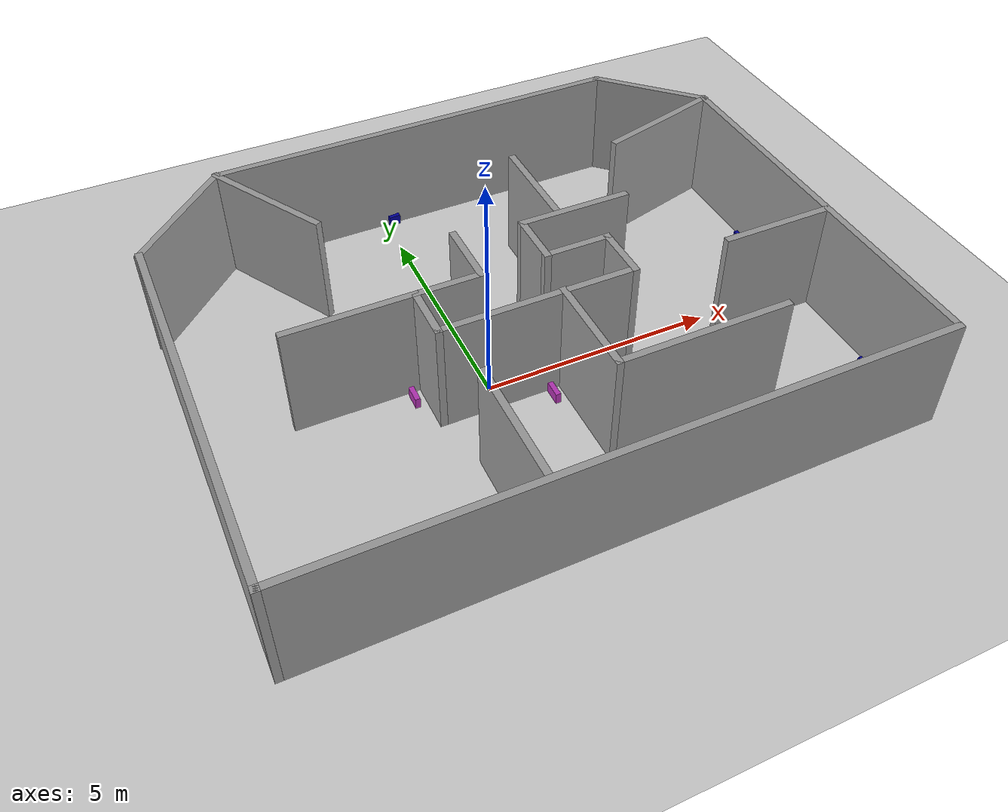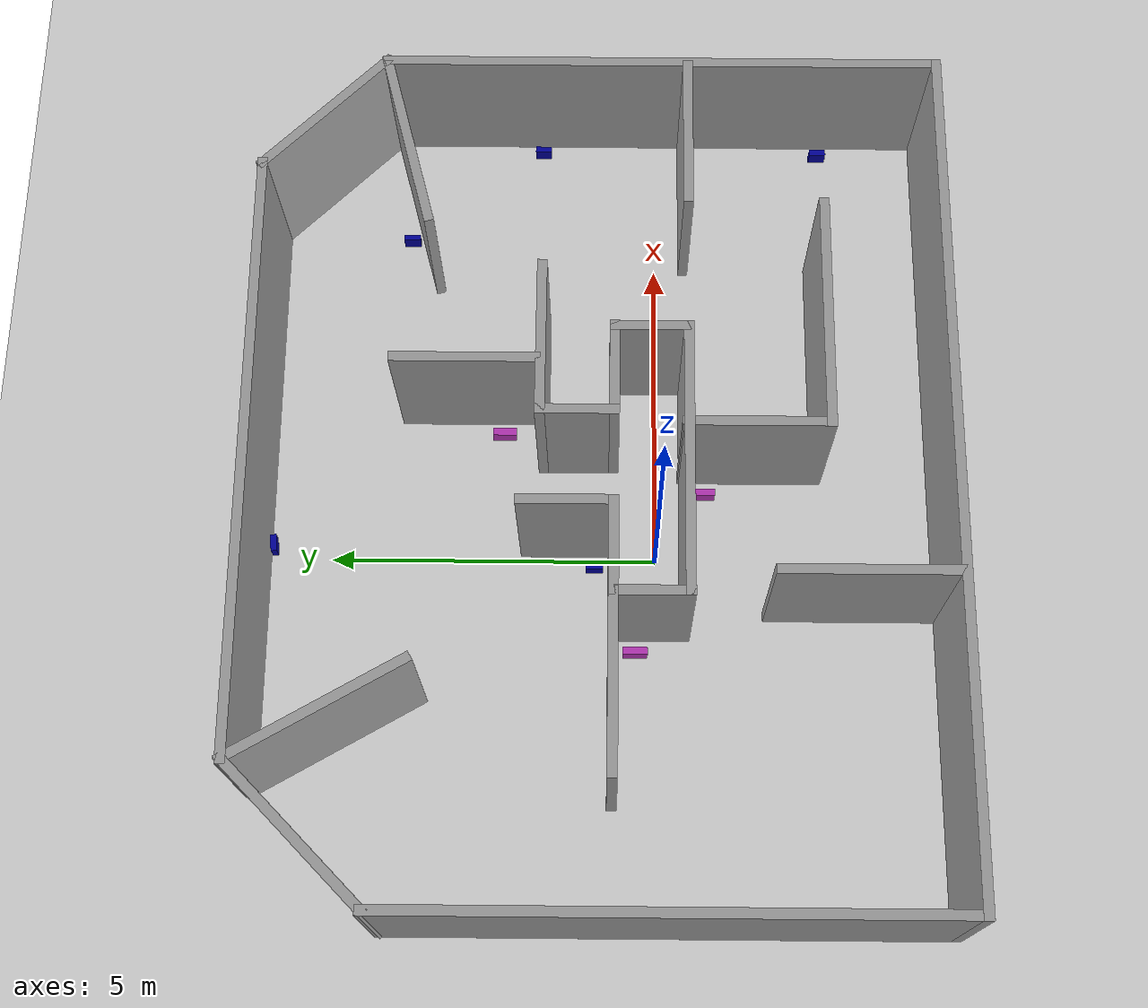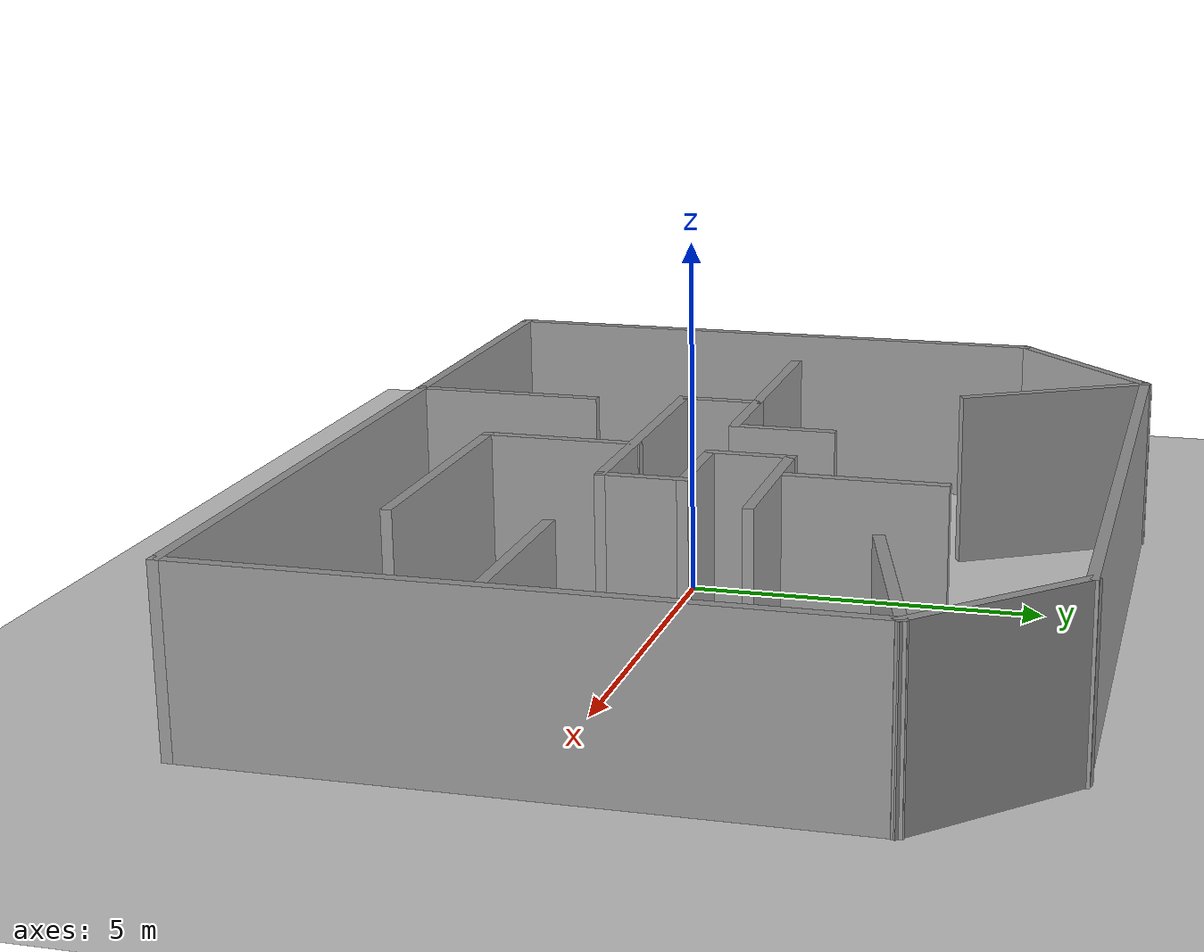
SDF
<sdf version="1.7">
 <world name="default">
  <light name="sun" type="directional">
   <pose>0 0 10 0 -0 0</pose>
   <diffuse>0.8 0.8 0.8 1</diffuse>
   <specular>0.2 0.2 0.2 1</specular>
   <attenuation>
    <range>1000</range>
    <constant>0.9</constant>
    <linear>0.01</linear>
    <quadratic>0.001</quadratic>
   </attenuation>
   <direction>-0.5 0.1 -0.9</direction>
   <spot><inner_angle>0</inner_angle><outer_angle>0</outer_angle><falloff>0</falloff></spot>
  </light>
  <model name="ground_plane">
   <static>1</static>
   <link name="link">
    <collision name="collision">
     <geometry><plane><normal>0 0 1</normal><size>100 100</size></plane></geometry>
     <surface><friction><ode><mu>100</mu><mu2>50</mu2></ode></friction></surface>
    </collision>
    <visual name="visual">
     <cast_shadows>0</cast_shadows>
     <geometry><plane><normal>0 0 1</normal><size>100 100</size></plane></geometry>
     <material>
      <script><uri>file://media/materials/scripts/gazebo.material</uri><name>Gazebo/Grey</name></script>
     </material>
    </visual>
   </link>
  </model>
  <gravity>0 0 -9.8</gravity>
  <magnetic_field>6e-06 2.3e-05 -4.2e-05</magnetic_field>
  <atmosphere type="adiabatic"/>
  <physics type="ode">
   <max_step_size>0.001</max_step_size>
   <real_time_factor>1</real_time_factor>
   <real_time_update_rate>1000</real_time_update_rate>
  </physics>
  <scene><ambient>0.4 0.4 0.4 1</ambient><background>0.7 0.7 0.7 1</background><shadows>1</shadows></scene>
  <audio><device>default</device></audio>
  <spherical_coordinates>
   <surface_model>EARTH_WGS84</surface_model>
   <latitude_deg>0</latitude_deg>
   <longitude_deg>0</longitude_deg>
   <elevation>0</elevation>
   <heading_deg>0</heading_deg>
  </spherical_coordinates>
  <model name="New_Enevironment">
   <pose>0.897235 0.87733 0 0 -0 0</pose>
   <link name="Wall_48">
    <collision name="Wall_48_Collision">
     <geometry><box><size>2.75 0.15 2.5</size></box></geometry>
     <pose>0 0 1.25 0 -0 0</pose>
    </collision>
    <visual name="Wall_48_Visual">
     <pose>0 0 1.25 0 -0 0</pose>
     <geometry><box><size>2.75 0.15 2.5</size></box></geometry>
     <material>
      <script><uri>file://media/materials/scripts/gazebo.material</uri><name>Gazebo/Grey</name></script>
      <ambient>1 1 1 1</ambient>
     </material>
     <meta><layer>0</layer></meta>
    </visual>
    <pose>5.63076 4.28447 0 0 -0 -0.785398</pose>
   </link>
   <link name="Wall_49">
    <collision name="Wall_49_Collision">
     <geometry><box><size>8.75 0.15 2.5</size></box></geometry>
     <pose>0 0 1.25 0 -0 0</pose>
    </collision>
    <visual name="Wall_49_Visual">
     <pose>0 0 1.25 0 -0 0</pose>
     <geometry><box><size>8.75 0.15 2.5</size></box></geometry>
     <material>
      <script><uri>file://media/materials/scripts/gazebo.material</uri><name>Gazebo/Grey</name></script>
      <ambient>1 1 1 1</ambient>
     </material>
     <meta><layer>0</layer></meta>
    </visual>
    <pose>6.55 -0.934772 0 0 -0 -1.5708</pose>
   </link>
   <link name="Wall_50">
    <collision name="Wall_50_Collision">
     <geometry><box><size>13.25 0.15 2.5</size></box></geometry>
     <pose>0 0 1.25 0 -0 0</pose>
    </collision>
    <visual name="Wall_50_Visual">
     <pose>0 0 1.25 0 -0 0</pose>
     <geometry><box><size>13.25 0.15 2.5</size></box></geometry>
     <material>
      <script><uri>file://media/materials/scripts/gazebo.material</uri><name>Gazebo/Grey</name></script>
      <ambient>1 1 1 1</ambient>
     </material>
     <meta><layer>0</layer></meta>
    </visual>
    <pose>-0 -5.23477 0 0 -0 3.14159</pose>
   </link>
   <link name="Wall_51">
    <collision name="Wall_51_Collision">
     <geometry><box><size>8.5 0.15 2.5</size></box></geometry>
     <pose>0 0 1.25 0 -0 0</pose>
    </collision>
    <visual name="Wall_51_Visual">
     <pose>0 0 1.25 0 -0 0</pose>
     <geometry><box><size>8.5 0.15 2.5</size></box></geometry>
     <material>
      <script><uri>file://media/materials/scripts/gazebo.material</uri><name>Gazebo/Grey</name></script>
      <ambient>1 1 1 1</ambient>
     </material>
     <meta><layer>0</layer></meta>
    </visual>
    <pose>-6.55 -1.05977 0 0 -0 1.5708</pose>
   </link>
   <link name="Wall_52">
    <collision name="Wall_52_Collision">
     <geometry><box><size>3 0.15 2.5</size></box></geometry>
     <pose>0 0 1.25 0 -0 0</pose>
    </collision>
    <visual name="Wall_52_Visual">
     <pose>0 0 1.25 0 -0 0</pose>
     <geometry><box><size>3 0.15 2.5</size></box></geometry>
     <material>
      <script><uri>file://media/materials/scripts/gazebo.material</uri><name>Gazebo/Grey</name></script>
      <ambient>1 1 1 1</ambient>
     </material>
     <meta><layer>0</layer></meta>
    </visual>
    <pose>-5.54237 4.12286 0 0 -0 0.785398</pose>
   </link>
   <link name="Wall_53">
    <collision name="Wall_53_Collision">
     <geometry><box><size>9.39656 0.15 2.5</size></box></geometry>
     <pose>0 0 1.25 0 -0 0</pose>
    </collision>
    <visual name="Wall_53_Visual">
     <pose>0 0 1.25 0 -0 0</pose>
     <geometry><box><size>9.39656 0.15 2.5</size></box></geometry>
     <material>
      <script><uri>file://media/materials/scripts/gazebo.material</uri><name>Gazebo/Grey</name></script>
      <ambient>1 1 1 1</ambient>
     </material>
     <meta><layer>0</layer></meta>
    </visual>
    <pose>0.088388 5.16709 0 0 -0 0.007919</pose>
   </link>
   <link name="Wall_55">
    <collision name="Wall_55_Collision">
     <geometry><box><size>1.5 0.15 2.5</size></box></geometry>
     <pose>0 0 1.25 0 -0 0</pose>
    </collision>
    <visual name="Wall_55_Visual">
     <pose>0 0 1.25 0 -0 0</pose>
     <geometry><box><size>1.5 0.15 2.5</size></box></geometry>
     <material>
      <script><uri>file://media/materials/scripts/gazebo.material</uri><name>Gazebo/Grey</name></script>
      <ambient>1 1 1 1</ambient>
     </material>
     <meta><layer>0</layer></meta>
    </visual>
    <pose>-0.741186 0.447969 0 0 -0 -1.5708</pose>
   </link>
   <link name="Wall_57">
    <collision name="Wall_57_Collision">
     <geometry><box><size>1.5 0.15 2.5</size></box></geometry>
     <pose>0 0 1.25 0 -0 0</pose>
    </collision>
    <visual name="Wall_57_Visual">
     <pose>0 0 1.25 0 -0 0</pose>
     <geometry><box><size>1.5 0.15 2.5</size></box></geometry>
     <material>
      <script><uri>file://media/materials/scripts/gazebo.material</uri><name>Gazebo/Grey</name></script>
      <ambient>1 1 1 1</ambient>
     </material>
     <meta><layer>0</layer></meta>
    </visual>
    <pose>-1.41619 -0.227031 0 0 -0 3.14159</pose>
   </link>
   <link name="Wall_58">
    <collision name="Wall_58_Collision">
     <geometry><box><size>1.25 0.15 2.5</size></box></geometry>
     <pose>0 0 1.25 0 -0 0</pose>
    </collision>
    <visual name="Wall_58_Visual">
     <pose>0 0 1.25 0 -0 0</pose>
     <geometry><box><size>1.25 0.15 2.5</size></box></geometry>
     <material>
      <script><uri>file://media/materials/scripts/gazebo.material</uri><name>Gazebo/Grey</name></script>
      <ambient>1 1 1 1</ambient>
     </material>
     <meta><layer>0</layer></meta>
    </visual>
    <pose>-2.09119 -0.777031 0 0 -0 -1.5708</pose>
   </link>
   <link name="Wall_59">
    <collision name="Wall_59_Collision">
     <geometry><box><size>4.25 0.15 2.5</size></box></geometry>
     <pose>0 0 1.25 0 -0 0</pose>
    </collision>
    <visual name="Wall_59_Visual">
     <pose>0 0 1.25 0 -0 0</pose>
     <geometry><box><size>4.25 0.15 2.5</size></box></geometry>
     <material>
      <script><uri>file://media/materials/scripts/gazebo.material</uri><name>Gazebo/Grey</name></script>
      <ambient>1 1 1 1</ambient>
     </material>
     <meta><layer>0</layer></meta>
    </visual>
    <pose>-0.041186 -1.32703 0 0 -0 0</pose>
   </link>
   <link name="Wall_60">
    <collision name="Wall_60_Collision">
     <geometry><box><size>1.25 0.15 2.5</size></box></geometry>
     <pose>0 0 1.25 0 -0 0</pose>
    </collision>
    <visual name="Wall_60_Visual">
     <pose>0 0 1.25 0 -0 0</pose>
     <geometry><box><size>1.25 0.15 2.5</size></box></geometry>
     <material>
      <script><uri>file://media/materials/scripts/gazebo.material</uri><name>Gazebo/Grey</name></script>
      <ambient>1 1 1 1</ambient>
     </material>
     <meta><layer>0</layer></meta>
    </visual>
    <pose>2.00881 -0.777031 0 0 -0 1.5708</pose>
   </link>
   <link name="Wall_61">
    <collision name="Wall_61_Collision">
     <geometry><box><size>1.5 0.15 2.5</size></box></geometry>
     <pose>0 0 1.25 0 -0 0</pose>
    </collision>
    <visual name="Wall_61_Visual">
     <pose>0 0 1.25 0 -0 0</pose>
     <geometry><box><size>1.5 0.15 2.5</size></box></geometry>
     <material>
      <script><uri>file://media/materials/scripts/gazebo.material</uri><name>Gazebo/Grey</name></script>
      <ambient>1 1 1 1</ambient>
     </material>
     <meta><layer>0</layer></meta>
    </visual>
    <pose>1.33381 -0.227031 0 0 -0 3.14159</pose>
   </link>
   <link name="Wall_62">
    <collision name="Wall_62_Collision">
     <geometry><box><size>1.25 0.15 2.5</size></box></geometry>
     <pose>0 0 1.25 0 -0 0</pose>
    </collision>
    <visual name="Wall_62_Visual">
     <pose>0 0 1.25 0 -0 0</pose>
     <geometry><box><size>1.25 0.15 2.5</size></box></geometry>
     <material>
      <script><uri>file://media/materials/scripts/gazebo.material</uri><name>Gazebo/Grey</name></script>
      <ambient>1 1 1 1</ambient>
     </material>
     <meta><layer>0</layer></meta>
    </visual>
    <pose>0.658814 0.322969 0 0 -0 1.5708</pose>
   </link>
   <link name="Wall_63">
    <collision name="Wall_63_Collision">
     <geometry><box><size>2.5 0.15 2.5</size></box></geometry>
     <pose>0 0 1.25 0 -0 0</pose>
    </collision>
    <visual name="Wall_63_Visual">
     <pose>0 0 1.25 0 -0 0</pose>
     <geometry><box><size>2.5 0.15 2.5</size></box></geometry>
     <material>
      <script><uri>file://media/materials/scripts/gazebo.material</uri><name>Gazebo/Grey</name></script>
      <ambient>1 1 1 1</ambient>
     </material>
     <meta><layer>0</layer></meta>
    </visual>
    <pose>1.83381 0.872969 0 0 -0 0</pose>
   </link>
   <link name="Wall_65">
    <collision name="Wall_65_Collision">
     <geometry><box><size>3 0.15 2.5</size></box></geometry>
     <pose>0 0 1.25 0 -0 0</pose>
    </collision>
    <visual name="Wall_65_Visual">
     <pose>0 0 1.25 0 -0 0</pose>
     <geometry><box><size>3 0.15 2.5</size></box></geometry>
     <material>
      <script><uri>file://media/materials/scripts/gazebo.material</uri><name>Gazebo/Grey</name></script>
      <ambient>1 1 1 1</ambient>
     </material>
     <meta><layer>0</layer></meta>
    </visual>
    <pose>-3.82225 3.8964 0 0 -0 -1.0472</pose>
   </link>
   <link name="Wall_71">
    <collision name="Wall_71_Collision">
     <geometry><box><size>2.25 0.15 2.5</size></box></geometry>
     <pose>0 0 1.25 0 -0 0</pose>
    </collision>
    <visual name="Wall_71_Visual">
     <pose>0 0 1.25 0 -0 0</pose>
     <geometry><box><size>2.25 0.15 2.5</size></box></geometry>
     <material>
      <script><uri>file://media/materials/scripts/gazebo.material</uri><name>Gazebo/Grey</name></script>
      <ambient>1 1 1 1</ambient>
     </material>
     <meta><layer>0</layer></meta>
    </visual>
    <pose>0.490071 -2.35437 0 0 -0 -1.5708</pose>
   </link>
   <link name="Wall_77">
    <collision name="Wall_77_Collision">
     <geometry><box><size>3 0.15 2.5</size></box></geometry>
     <pose>0 0 1.25 0 -0 0</pose>
    </collision>
    <visual name="Wall_77_Visual">
     <pose>0 0 1.25 0 -0 0</pose>
     <geometry><box><size>3 0.15 2.5</size></box></geometry>
     <material>
      <script><uri>file://media/materials/scripts/gazebo.material</uri><name>Gazebo/Grey</name></script>
      <ambient>1 1 1 1</ambient>
     </material>
     <meta><layer>0</layer></meta>
    </visual>
    <pose>5.17356 2.99641 0 0 -0 -2.87979</pose>
   </link>
   <link name="Wall_80">
    <collision name="Wall_80_Collision">
     <geometry><box><size>2.25 0.15 2.5</size></box></geometry>
     <pose>0 0 1.25 0 -0 0</pose>
    </collision>
    <visual name="Wall_80_Visual">
     <pose>0 0 1.25 0 -0 0</pose>
     <geometry><box><size>2.25 0.15 2.5</size></box></geometry>
     <material>
      <script><uri>file://media/materials/scripts/gazebo.material</uri><name>Gazebo/Grey</name></script>
      <ambient>1 1 1 1</ambient>
     </material>
     <meta><layer>0</layer></meta>
    </visual>
    <pose>1.47508 1.99708 0 0 -0 1.5708</pose>
   </link>
   <link name="Wall_82">
    <collision name="Wall_82_Collision">
     <geometry><box><size>3.75 0.15 2.5</size></box></geometry>
     <pose>0 0 1.25 0 -0 0</pose>
    </collision>
    <visual name="Wall_82_Visual">
     <pose>0 0 1.25 0 -0 0</pose>
     <geometry><box><size>3.75 0.15 2.5</size></box></geometry>
     <material>
      <script><uri>file://media/materials/scripts/gazebo.material</uri><name>Gazebo/Grey</name></script>
      <ambient>1 1 1 1</ambient>
     </material>
     <meta><layer>0</layer></meta>
    </visual>
    <pose>2.29007 -3.40436 0 0 -0 0</pose>
   </link>
   <link name="Wall_84">
    <collision name="Wall_84_Collision">
     <geometry><box><size>2.5 0.15 2.5</size></box></geometry>
     <pose>0 0 1.25 0 -0 0</pose>
    </collision>
    <visual name="Wall_84_Visual">
     <pose>0 0 1.25 0 -0 0</pose>
     <geometry><box><size>2.5 0.15 2.5</size></box></geometry>
     <material>
      <script><uri>file://media/materials/scripts/gazebo.material</uri><name>Gazebo/Grey</name></script>
      <ambient>1 1 1 1</ambient>
     </material>
     <meta><layer>0</layer></meta>
    </visual>
    <pose>5.33064 -1.33954 0 0 -0 3.14159</pose>
   </link>
   <link name="Wall_86">
    <collision name="Wall_86_Collision">
     <geometry><box><size>2.75 0.15 2.5</size></box></geometry>
     <pose>0 0 1.25 0 -0 0</pose>
    </collision>
    <visual name="Wall_86_Visual">
     <pose>0 0 1.25 0 -0 0</pose>
     <geometry><box><size>2.75 0.15 2.5</size></box></geometry>
     <material>
      <script><uri>file://media/materials/scripts/gazebo.material</uri><name>Gazebo/Grey</name></script>
      <ambient>1 1 1 1</ambient>
     </material>
     <meta><layer>0</layer></meta>
    </visual>
    <pose>-1.76137 -3.90921 0 0 -0 1.5708</pose>
   </link>
   <link name="Wall_91">
    <collision name="Wall_91_Collision">
     <geometry><box><size>2.75 0.15 2.5</size></box></geometry>
     <pose>0 0 1.25 0 -0 0</pose>
    </collision>
    <visual name="Wall_91_Visual">
     <pose>0 0 1.25 0 -0 0</pose>
     <geometry><box><size>2.75 0.15 2.5</size></box></geometry>
     <material>
      <script><uri>file://media/materials/scripts/gazebo.material</uri><name>Gazebo/Grey</name></script>
      <ambient>1 1 1 1</ambient>
     </material>
     <meta><layer>0</layer></meta>
    </visual>
    <pose>-3.39119 -0.227031 0 0 -0 3.14159</pose>
   </link>
   <static>1</static>
  </model>
  <model name="first_aid_kit">
   <link name="link_1">
    <inertial>
     <mass>0.00994127</mass>
     <inertia>
      <ixx>0.0001228</ixx>
      <ixy>0</ixy>
      <ixz>0</ixz>
      <iyy>5.994e-05</iyy>
      <iyz>0</iyz>
      <izz>0.00016278</izz>
     </inertia>
    </inertial>
    <pose>0 0 -0 -3.14159 -1.56087 -3.14159</pose>
    <visual name="visual">
     <geometry><box><size>0.245571 0.369032 0.109736</size></box></geometry>
     <material>
      <lighting>1</lighting>
      <script><uri>file://media/materials/scripts/gazebo.material</uri><name>Gazebo/Grey</name></script>
      <shader type="pixel"><normal_map>__default__</normal_map></shader>
      <ambient>0 0.7 0 0</ambient>
      <diffuse>0.7 0.2 0.7 1</diffuse>
      <specular>0.01 0.81 0.01 1</specular>
      <emissive>0 0.2 0 1</emissive>
     </material>
    </visual>
    <collision name="collision">
     <geometry><box><size>0.245571 0.369032 0.109736</size></box></geometry>
     <surface>
      <friction>
       <ode><mu>1</mu><mu2>1</mu2><fdir1>0 0 0</fdir1><slip1>0</slip1><slip2>0</slip2></ode>
       <torsional>
        <coefficient>1</coefficient>
        <patch_radius>0</patch_radius>
        <surface_radius>0</surface_radius>
        <use_patch_radius>1</use_patch_radius>
        <ode><slip>0</slip></ode>
       </torsional>
      </friction>
      <bounce><restitution_coefficient>0</restitution_coefficient><threshold>1e+06</threshold></bounce>
      <contact>
       <collide_without_contact>0</collide_without_contact>
       <collide_without_contact_bitmask>1</collide_without_contact_bitmask>
       <collide_bitmask>1</collide_bitmask>
       <ode>
        <soft_cfm>0</soft_cfm>
        <soft_erp>0.2</soft_erp>
        <kp>1e+13</kp>
        <kd>1</kd>
        <max_vel>0.01</max_vel>
        <min_depth>0</min_depth>
       </ode>
       <bullet>
        <split_impulse>1</split_impulse>
        <split_impulse_penetration_threshold>-0.01</split_impulse_penetration_threshold>
        <soft_cfm>0</soft_cfm>
        <soft_erp>0.2</soft_erp>
        <kp>1e+13</kp>
        <kd>1</kd>
       </bullet>
      </contact>
     </surface>
    </collision>
   </link>
   <static>1</static>
   <pose>2.06923 2.37051 0.15055 0 -0 0</pose>
  </model>
  <model name="first_aid_kit_0">
   <link name="link_1">
    <inertial>
     <mass>0.00994127</mass>
     <inertia>
      <ixx>0.0001228</ixx>
      <ixy>0</ixy>
      <ixz>0</ixz>
      <iyy>5.994e-05</iyy>
      <iyz>0</iyz>
      <izz>0.00016278</izz>
     </inertia>
    </inertial>
    <pose>0 0 -0 -3.14159 -1.56087 -3.14159</pose>
    <visual name="visual">
     <geometry><box><size>0.245571 0.369032 0.109736</size></box></geometry>
     <material>
      <lighting>1</lighting>
      <script><uri>file://media/materials/scripts/gazebo.material</uri><name>Gazebo/Grey</name></script>
      <shader type="pixel"><normal_map>__default__</normal_map></shader>
      <ambient>0 0.7 0 0</ambient>
      <diffuse>0.7 0.2 0.7 1</diffuse>
      <specular>0.01 0.81 0.01 1</specular>
      <emissive>0 0.2 0 1</emissive>
     </material>
    </visual>
    <collision name="collision">
     <geometry><box><size>0.245571 0.369032 0.109736</size></box></geometry>
     <surface>
      <friction>
       <ode><mu>1</mu><mu2>1</mu2><fdir1>0 0 0</fdir1><slip1>0</slip1><slip2>0</slip2></ode>
       <torsional>
        <coefficient>1</coefficient>
        <patch_radius>0</patch_radius>
        <surface_radius>0</surface_radius>
        <use_patch_radius>1</use_patch_radius>
        <ode><slip>0</slip></ode>
       </torsional>
      </friction>
      <bounce><restitution_coefficient>0</restitution_coefficient><threshold>1e+06</threshold></bounce>
      <contact>
       <collide_without_contact>0</collide_without_contact>
       <collide_without_contact_bitmask>1</collide_without_contact_bitmask>
       <collide_bitmask>1</collide_bitmask>
       <ode>
        <soft_cfm>0</soft_cfm>
        <soft_erp>0.2</soft_erp>
        <kp>1e+13</kp>
        <kd>1</kd>
        <max_vel>0.01</max_vel>
        <min_depth>0</min_depth>
       </ode>
       <bullet>
        <split_impulse>1</split_impulse>
        <split_impulse_penetration_threshold>-0.01</split_impulse_penetration_threshold>
        <soft_cfm>0</soft_cfm>
        <soft_erp>0.2</soft_erp>
        <kp>1e+13</kp>
        <kd>1</kd>
       </bullet>
      </contact>
     </surface>
    </collision>
   </link>
   <static>1</static>
   <pose>2.50893 2.07011 0.1479 0 -0 0</pose>
  </model>
  <model name="first_aid_kit_1">
   <link name="link_1">
    <inertial>
     <mass>0.00994127</mass>
     <inertia>
      <ixx>0.0001228</ixx>
      <ixy>0</ixy>
      <ixz>0</ixz>
      <iyy>5.994e-05</iyy>
      <iyz>0</iyz>
      <izz>0.00016278</izz>
     </inertia>
    </inertial>
    <pose>0 0 -0 -3.14159 -1.56087 -3.14159</pose>
    <visual name="visual">
     <geometry><box><size>0.245571 0.369032 0.109736</size></box></geometry>
     <material>
      <lighting>1</lighting>
      <script><uri>file://media/materials/scripts/gazebo.material</uri><name>Gazebo/Grey</name></script>
      <shader type="pixel"><normal_map>__default__</normal_map></shader>
      <ambient>0 0.7 0 0</ambient>
      <diffuse>0.7 0.2 0.7 1</diffuse>
      <specular>0.01 0.81 0.01 1</specular>
      <emissive>0 0.2 0 1</emissive>
     </material>
    </visual>
    <collision name="collision">
     <geometry><box><size>0.245571 0.369032 0.109736</size></box></geometry>
     <surface>
      <friction>
       <ode><mu>1</mu><mu2>1</mu2><fdir1>0 0 0</fdir1><slip1>0</slip1><slip2>0</slip2></ode>
       <torsional>
        <coefficient>1</coefficient>
        <patch_radius>0</patch_radius>
        <surface_radius>0</surface_radius>
        <use_patch_radius>1</use_patch_radius>
        <ode><slip>0</slip></ode>
       </torsional>
      </friction>
      <bounce><restitution_coefficient>0</restitution_coefficient><threshold>1e+06</threshold></bounce>
      <contact>
       <collide_without_contact>0</collide_without_contact>
       <collide_without_contact_bitmask>1</collide_without_contact_bitmask>
       <collide_bitmask>1</collide_bitmask>
       <ode>
        <soft_cfm>0</soft_cfm>
        <soft_erp>0.2</soft_erp>
        <kp>1e+13</kp>
        <kd>1</kd>
        <max_vel>0.01</max_vel>
        <min_depth>0</min_depth>
       </ode>
       <bullet>
        <split_impulse>1</split_impulse>
        <split_impulse_penetration_threshold>-0.01</split_impulse_penetration_threshold>
        <soft_cfm>0</soft_cfm>
        <soft_erp>0.2</soft_erp>
        <kp>1e+13</kp>
        <kd>1</kd>
       </bullet>
      </contact>
     </surface>
    </collision>
   </link>
   <static>1</static>
   <pose>1.69139 1.29537 0.154637 0 -0 0</pose>
  </model>
  <model name="first_aid_kit_2">
   <link name="link_1">
    <inertial>
     <mass>0.00994127</mass>
     <inertia>
      <ixx>0.0001228</ixx>
      <ixy>0</ixy>
      <ixz>0</ixz>
      <iyy>5.994e-05</iyy>
      <iyz>0</iyz>
      <izz>0.00016278</izz>
     </inertia>
    </inertial>
    <pose>0 0 -0 -3.14159 -1.56087 -3.14159</pose>
    <visual name="visual">
     <geometry><box><size>0.245571 0.369032 0.109736</size></box></geometry>
     <material>
      <lighting>1</lighting>
      <script><uri>file://media/materials/scripts/gazebo.material</uri><name>Gazebo/Grey</name></script>
      <shader type="pixel"><normal_map>__default__</normal_map></shader>
      <ambient>0 0.7 0 0</ambient>
      <diffuse>0.7 0.2 0.7 1</diffuse>
      <specular>0.01 0.81 0.01 1</specular>
      <emissive>0 0.2 0 1</emissive>
     </material>
    </visual>
    <collision name="collision">
     <geometry><box><size>0.245571 0.369032 0.109736</size></box></geometry>
     <surface>
      <friction>
       <ode><mu>1</mu><mu2>1</mu2><fdir1>0 0 0</fdir1><slip1>0</slip1><slip2>0</slip2></ode>
       <torsional>
        <coefficient>1</coefficient>
        <patch_radius>0</patch_radius>
        <surface_radius>0</surface_radius>
        <use_patch_radius>1</use_patch_radius>
        <ode><slip>0</slip></ode>
       </torsional>
      </friction>
      <bounce><restitution_coefficient>0</restitution_coefficient><threshold>1e+06</threshold></bounce>
      <contact>
       <collide_without_contact>0</collide_without_contact>
       <collide_without_contact_bitmask>1</collide_without_contact_bitmask>
       <collide_bitmask>1</collide_bitmask>
       <ode>
        <soft_cfm>0</soft_cfm>
        <soft_erp>0.2</soft_erp>
        <kp>1e+13</kp>
        <kd>1</kd>
        <max_vel>0.01</max_vel>
        <min_depth>0</min_depth>
       </ode>
       <bullet>
        <split_impulse>1</split_impulse>
        <split_impulse_penetration_threshold>-0.01</split_impulse_penetration_threshold>
        <soft_cfm>0</soft_cfm>
        <soft_erp>0.2</soft_erp>
        <kp>1e+13</kp>
        <kd>1</kd>
       </bullet>
      </contact>
     </surface>
    </collision>
   </link>
   <static>1</static>
   <pose>1.08479 -0.751937 0.137587 0 -0 0</pose>
  </model>
  <model name="first_aid_kit_3">
   <link name="link_1">
    <inertial>
     <mass>0.00994127</mass>
     <inertia>
      <ixx>0.0001228</ixx>
      <ixy>0</ixy>
      <ixz>0</ixz>
      <iyy>5.994e-05</iyy>
      <iyz>0</iyz>
      <izz>0.00016278</izz>
     </inertia>
    </inertial>
    <pose>0 0 -0 -3.14159 -1.56087 -3.14159</pose>
    <visual name="visual">
     <geometry><box><size>0.245571 0.369032 0.109736</size></box></geometry>
     <material>
      <lighting>1</lighting>
      <script><uri>file://media/materials/scripts/gazebo.material</uri><name>Gazebo/Grey</name></script>
      <shader type="pixel"><normal_map>__default__</normal_map></shader>
      <ambient>0 0.7 0 0</ambient>
      <diffuse>0.7 0.2 0.7 1</diffuse>
      <specular>0.01 0.81 0.01 1</specular>
      <emissive>0 0.2 0 1</emissive>
     </material>
    </visual>
    <collision name="collision">
     <geometry><box><size>0.245571 0.369032 0.109736</size></box></geometry>
     <surface>
      <friction>
       <ode><mu>1</mu><mu2>1</mu2><fdir1>0 0 0</fdir1><slip1>0</slip1><slip2>0</slip2></ode>
       <torsional>
        <coefficient>1</coefficient>
        <patch_radius>0</patch_radius>
        <surface_radius>0</surface_radius>
        <use_patch_radius>1</use_patch_radius>
        <ode><slip>0</slip></ode>
       </torsional>
      </friction>
      <bounce><restitution_coefficient>0</restitution_coefficient><threshold>1e+06</threshold></bounce>
      <contact>
       <collide_without_contact>0</collide_without_contact>
       <collide_without_contact_bitmask>1</collide_without_contact_bitmask>
       <collide_bitmask>1</collide_bitmask>
       <ode>
        <soft_cfm>0</soft_cfm>
        <soft_erp>0.2</soft_erp>
        <kp>1e+13</kp>
        <kd>1</kd>
        <max_vel>0.01</max_vel>
        <min_depth>0</min_depth>
       </ode>
       <bullet>
        <split_impulse>1</split_impulse>
        <split_impulse_penetration_threshold>-0.01</split_impulse_penetration_threshold>
        <soft_cfm>0</soft_cfm>
        <soft_erp>0.2</soft_erp>
        <kp>1e+13</kp>
        <kd>1</kd>
       </bullet>
      </contact>
     </surface>
    </collision>
   </link>
   <static>1</static>
   <pose>-1.48505 0.299987 0.142618 0 -0 0</pose>
  </model>
  <model name="aed_kit">
   <link name="link_2">
    <inertial>
     <mass>0.00570831</mass>
     <inertia>
      <ixx>6.029e-05</ixx>
      <ixy>0</ixy>
      <ixz>0</ixz>
      <iyy>3.154e-05</iyy>
      <iyz>0</iyz>
      <izz>3.655e-05</izz>
     </inertia>
    </inertial>
    <visual name="visual">
     <geometry><box><size>0.090498 0.261985 0.24107</size></box></geometry>
     <material>
      <lighting>1</lighting>
      <script><uri>file://media/materials/scripts/gazebo.material</uri><name>Gazebo/Grey</name></script>
      <shader type="pixel"><normal_map>__default__</normal_map></shader>
      <diffuse>0 0 0.6 0</diffuse>
      <ambient>0.3 0.3 0.3 1</ambient>
      <specular>0.01 0.01 0.31 1</specular>
      <emissive>0 0 0.3 1</emissive>
     </material>
    </visual>
    <collision name="collision">
     <geometry><box><size>0.090498 0.261985 0.24107</size></box></geometry>
     <surface>
      <friction>
       <ode><mu>1</mu><mu2>1</mu2><fdir1>0 0 0</fdir1><slip1>0</slip1><slip2>0</slip2></ode>
       <torsional>
        <coefficient>1</coefficient>
        <patch_radius>0</patch_radius>
        <surface_radius>0</surface_radius>
        <use_patch_radius>1</use_patch_radius>
        <ode><slip>0</slip></ode>
       </torsional>
      </friction>
      <bounce><restitution_coefficient>0</restitution_coefficient><threshold>1e+06</threshold></bounce>
      <contact>
       <collide_without_contact>0</collide_without_contact>
       <collide_without_contact_bitmask>1</collide_without_contact_bitmask>
       <collide_bitmask>1</collide_bitmask>
       <ode>
        <soft_cfm>0</soft_cfm>
        <soft_erp>0.2</soft_erp>
        <kp>1e+13</kp>
        <kd>1</kd>
        <max_vel>0.01</max_vel>
        <min_depth>0</min_depth>
       </ode>
       <bullet>
        <split_impulse>1</split_impulse>
        <split_impulse_penetration_threshold>-0.01</split_impulse_penetration_threshold>
        <soft_cfm>0</soft_cfm>
        <soft_erp>0.2</soft_erp>
        <kp>1e+13</kp>
        <kd>1</kd>
       </bullet>
      </contact>
     </surface>
    </collision>
   </link>
   <static>1</static>
   <pose>-0.142107 0.934052 0.123966 0 -0 0</pose>
  </model>
  <model name="aed_kit_clone">
   <link name="link_2">
    <inertial>
     <mass>0.00570831</mass>
     <inertia>
      <ixx>6.029e-05</ixx>
      <ixy>0</ixy>
      <ixz>0</ixz>
      <iyy>3.154e-05</iyy>
      <iyz>0</iyz>
      <izz>3.655e-05</izz>
     </inertia>
    </inertial>
    <visual name="visual">
     <geometry><box><size>0.090498 0.261985 0.24107</size></box></geometry>
     <material>
      <lighting>1</lighting>
      <script><uri>file://media/materials/scripts/gazebo.material</uri><name>Gazebo/Grey</name></script>
      <shader type="pixel"><normal_map>__default__</normal_map></shader>
      <diffuse>0 0 0.6 0</diffuse>
      <ambient>0.3 0.3 0.3 1</ambient>
      <specular>0.01 0.01 0.31 1</specular>
      <emissive>0 0 0.3 1</emissive>
     </material>
    </visual>
    <collision name="collision">
     <geometry><box><size>0.090498 0.261985 0.24107</size></box></geometry>
     <surface>
      <friction>
       <ode><mu>1</mu><mu2>1</mu2><fdir1>0 0 0</fdir1><slip1>0</slip1><slip2>0</slip2></ode>
       <torsional>
        <coefficient>1</coefficient>
        <patch_radius>0</patch_radius>
        <surface_radius>0</surface_radius>
        <use_patch_radius>1</use_patch_radius>
        <ode><slip>0</slip></ode>
       </torsional>
      </friction>
      <bounce><restitution_coefficient>0</restitution_coefficient><threshold>1e+06</threshold></bounce>
      <contact>
       <collide_without_contact>0</collide_without_contact>
       <collide_without_contact_bitmask>1</collide_without_contact_bitmask>
       <collide_bitmask>1</collide_bitmask>
       <ode>
        <soft_cfm>0</soft_cfm>
        <soft_erp>0.2</soft_erp>
        <kp>1e+13</kp>
        <kd>1</kd>
        <max_vel>0.01</max_vel>
        <min_depth>0</min_depth>
       </ode>
       <bullet>
        <split_impulse>1</split_impulse>
        <split_impulse_penetration_threshold>-0.01</split_impulse_penetration_threshold>
        <soft_cfm>0</soft_cfm>
        <soft_erp>0.2</soft_erp>
        <kp>1e+13</kp>
        <kd>1</kd>
       </bullet>
      </contact>
     </surface>
    </collision>
   </link>
   <static>1</static>
   <pose>5.51252 3.9848 0.123966 0 -0 0</pose>
  </model>
  <model name="aed_kit_clone_0">
   <link name="link_2">
    <inertial>
     <mass>0.00570831</mass>
     <inertia>
      <ixx>6.029e-05</ixx>
      <ixy>0</ixy>
      <ixz>0</ixz>
      <iyy>3.154e-05</iyy>
      <iyz>0</iyz>
      <izz>3.655e-05</izz>
     </inertia>
    </inertial>
    <visual name="visual">
     <geometry><box><size>0.090498 0.261985 0.24107</size></box></geometry>
     <material>
      <lighting>1</lighting>
      <script><uri>file://media/materials/scripts/gazebo.material</uri><name>Gazebo/Grey</name></script>
      <shader type="pixel"><normal_map>__default__</normal_map></shader>
      <diffuse>0 0 0.6 0</diffuse>
      <ambient>0.3 0.3 0.3 1</ambient>
      <specular>0.01 0.01 0.31 1</specular>
      <emissive>0 0 0.3 1</emissive>
     </material>
    </visual>
    <collision name="collision">
     <geometry><box><size>0.090498 0.261985 0.24107</size></box></geometry>
     <surface>
      <friction>
       <ode><mu>1</mu><mu2>1</mu2><fdir1>0 0 0</fdir1><slip1>0</slip1><slip2>0</slip2></ode>
       <torsional>
        <coefficient>1</coefficient>
        <patch_radius>0</patch_radius>
        <surface_radius>0</surface_radius>
        <use_patch_radius>1</use_patch_radius>
        <ode><slip>0</slip></ode>
       </torsional>
      </friction>
      <bounce><restitution_coefficient>0</restitution_coefficient><threshold>1e+06</threshold></bounce>
      <contact>
       <collide_without_contact>0</collide_without_contact>
       <collide_without_contact_bitmask>1</collide_without_contact_bitmask>
       <collide_bitmask>1</collide_bitmask>
       <ode>
        <soft_cfm>0</soft_cfm>
        <soft_erp>0.2</soft_erp>
        <kp>1e+13</kp>
        <kd>1</kd>
        <max_vel>0.01</max_vel>
        <min_depth>0</min_depth>
       </ode>
       <bullet>
        <split_impulse>1</split_impulse>
        <split_impulse_penetration_threshold>-0.01</split_impulse_penetration_threshold>
        <soft_cfm>0</soft_cfm>
        <soft_erp>0.2</soft_erp>
        <kp>1e+13</kp>
        <kd>1</kd>
       </bullet>
      </contact>
     </surface>
    </collision>
   </link>
   <static>1</static>
   <pose>7.18655 1.85054 0.123966 0 -0 0</pose>
  </model>
  <model name="aed_kit_clone_1">
   <link name="link_2">
    <inertial>
     <mass>0.00570831</mass>
     <inertia>
      <ixx>6.029e-05</ixx>
      <ixy>0</ixy>
      <ixz>0</ixz>
      <iyy>3.154e-05</iyy>
      <iyz>0</iyz>
      <izz>3.655e-05</izz>
     </inertia>
    </inertial>
    <visual name="visual">
     <geometry><box><size>0.090498 0.261985 0.24107</size></box></geometry>
     <material>
      <lighting>1</lighting>
      <script><uri>file://media/materials/scripts/gazebo.material</uri><name>Gazebo/Grey</name></script>
      <shader type="pixel"><normal_map>__default__</normal_map></shader>
      <diffuse>0 0 0.6 0</diffuse>
      <ambient>0.3 0.3 0.3 1</ambient>
      <specular>0.01 0.01 0.31 1</specular>
      <emissive>0 0 0.3 1</emissive>
     </material>
    </visual>
    <collision name="collision">
     <geometry><box><size>0.090498 0.261985 0.24107</size></box></geometry>
     <surface>
      <friction>
       <ode><mu>1</mu><mu2>1</mu2><fdir1>0 0 0</fdir1><slip1>0</slip1><slip2>0</slip2></ode>
       <torsional>
        <coefficient>1</coefficient>
        <patch_radius>0</patch_radius>
        <surface_radius>0</surface_radius>
        <use_patch_radius>1</use_patch_radius>
        <ode><slip>0</slip></ode>
       </torsional>
      </friction>
      <bounce><restitution_coefficient>0</restitution_coefficient><threshold>1e+06</threshold></bounce>
      <contact>
       <collide_without_contact>0</collide_without_contact>
       <collide_without_contact_bitmask>1</collide_without_contact_bitmask>
       <collide_bitmask>1</collide_bitmask>
       <ode>
        <soft_cfm>0</soft_cfm>
        <soft_erp>0.2</soft_erp>
        <kp>1e+13</kp>
        <kd>1</kd>
        <max_vel>0.01</max_vel>
        <min_depth>0</min_depth>
       </ode>
       <bullet>
        <split_impulse>1</split_impulse>
        <split_impulse_penetration_threshold>-0.01</split_impulse_penetration_threshold>
        <soft_cfm>0</soft_cfm>
        <soft_erp>0.2</soft_erp>
        <kp>1e+13</kp>
        <kd>1</kd>
       </bullet>
      </contact>
     </surface>
    </collision>
   </link>
   <static>1</static>
   <pose>3.03722 0.130297 0.123966 0 -0 0</pose>
  </model>
  <model name="aed_kit_clone_2">
   <link name="link_2">
    <inertial>
     <mass>0.00570831</mass>
     <inertia>
      <ixx>6.029e-05</ixx>
      <ixy>0</ixy>
      <ixz>0</ixz>
      <iyy>3.154e-05</iyy>
      <iyz>0</iyz>
      <izz>3.655e-05</izz>
     </inertia>
    </inertial>
    <visual name="visual">
     <geometry><box><size>0.090498 0.261985 0.24107</size></box></geometry>
     <material>
      <lighting>1</lighting>
      <script><uri>file://media/materials/scripts/gazebo.material</uri><name>Gazebo/Grey</name></script>
      <shader type="pixel"><normal_map>__default__</normal_map></shader>
      <diffuse>0 0 0.6 0</diffuse>
      <ambient>0.3 0.3 0.3 1</ambient>
      <specular>0.01 0.01 0.31 1</specular>
      <emissive>0 0 0.3 1</emissive>
     </material>
    </visual>
    <collision name="collision">
     <geometry><box><size>0.090498 0.261985 0.24107</size></box></geometry>
     <surface>
      <friction>
       <ode><mu>1</mu><mu2>1</mu2><fdir1>0 0 0</fdir1><slip1>0</slip1><slip2>0</slip2></ode>
       <torsional>
        <coefficient>1</coefficient>
        <patch_radius>0</patch_radius>
        <surface_radius>0</surface_radius>
        <use_patch_radius>1</use_patch_radius>
        <ode><slip>0</slip></ode>
       </torsional>
      </friction>
      <bounce><restitution_coefficient>0</restitution_coefficient><threshold>1e+06</threshold></bounce>
      <contact>
       <collide_without_contact>0</collide_without_contact>
       <collide_without_contact_bitmask>1</collide_without_contact_bitmask>
       <collide_bitmask>1</collide_bitmask>
       <ode>
        <soft_cfm>0</soft_cfm>
        <soft_erp>0.2</soft_erp>
        <kp>1e+13</kp>
        <kd>1</kd>
        <max_vel>0.01</max_vel>
        <min_depth>0</min_depth>
       </ode>
       <bullet>
        <split_impulse>1</split_impulse>
        <split_impulse_penetration_threshold>-0.01</split_impulse_penetration_threshold>
        <soft_cfm>0</soft_cfm>
        <soft_erp>0.2</soft_erp>
        <kp>1e+13</kp>
        <kd>1</kd>
       </bullet>
      </contact>
     </surface>
    </collision>
   </link>
   <static>1</static>
   <pose>7.15918 -2.73362 0.123966 0 -0 0</pose>
  </model>
  <model name="aed_kit_clone_3">
   <link name="link_2">
    <inertial>
     <mass>0.00570831</mass>
     <inertia>
      <ixx>6.029e-05</ixx>
      <ixy>0</ixy>
      <ixz>0</ixz>
      <iyy>3.154e-05</iyy>
      <iyz>0</iyz>
      <izz>3.655e-05</izz>
     </inertia>
    </inertial>
    <visual name="visual">
     <geometry><box><size>0.090498 0.261985 0.24107</size></box></geometry>
     <material>
      <lighting>1</lighting>
      <script><uri>file://media/materials/scripts/gazebo.material</uri><name>Gazebo/Grey</name></script>
      <shader type="pixel"><normal_map>__default__</normal_map></shader>
      <diffuse>0 0 0.6 0</diffuse>
      <ambient>0.3 0.3 0.3 1</ambient>
      <specular>0.01 0.01 0.31 1</specular>
      <emissive>0 0 0.3 1</emissive>
     </material>
    </visual>
    <collision name="collision">
     <geometry><box><size>0.090498 0.261985 0.24107</size></box></geometry>
     <surface>
      <friction>
       <ode><mu>1</mu><mu2>1</mu2><fdir1>0 0 0</fdir1><slip1>0</slip1><slip2>0</slip2></ode>
       <torsional>
        <coefficient>1</coefficient>
        <patch_radius>0</patch_radius>
        <surface_radius>0</surface_radius>
        <use_patch_radius>1</use_patch_radius>
        <ode><slip>0</slip></ode>
       </torsional>
      </friction>
      <bounce><restitution_coefficient>0</restitution_coefficient><threshold>1e+06</threshold></bounce>
      <contact>
       <collide_without_contact>0</collide_without_contact>
       <collide_without_contact_bitmask>1</collide_without_contact_bitmask>
       <collide_bitmask>1</collide_bitmask>
       <ode>
        <soft_cfm>0</soft_cfm>
        <soft_erp>0.2</soft_erp>
        <kp>1e+13</kp>
        <kd>1</kd>
        <max_vel>0.01</max_vel>
        <min_depth>0</min_depth>
       </ode>
       <bullet>
        <split_impulse>1</split_impulse>
        <split_impulse_penetration_threshold>-0.01</split_impulse_penetration_threshold>
        <soft_cfm>0</soft_cfm>
        <soft_erp>0.2</soft_erp>
        <kp>1e+13</kp>
        <kd>1</kd>
       </bullet>
      </contact>
     </surface>
    </collision>
   </link>
   <static>1</static>
   <pose>-5.63687 -2.05524 0.123966 0 -0 0</pose>
  </model>
  <model name="aed_kit_clone_4">
   <link name="link_2">
    <inertial>
     <mass>0.00570831</mass>
     <inertia>
      <ixx>6.029e-05</ixx>
      <ixy>0</ixy>
      <ixz>0</ixz>
      <iyy>3.154e-05</iyy>
      <iyz>0</iyz>
      <izz>3.655e-05</izz>
     </inertia>
    </inertial>
    <visual name="visual">
     <geometry><box><size>0.090498 0.261985 0.24107</size></box></geometry>
     <material>
      <lighting>1</lighting>
      <script><uri>file://media/materials/scripts/gazebo.material</uri><name>Gazebo/Grey</name></script>
      <shader type="pixel"><normal_map>__default__</normal_map></shader>
      <diffuse>0 0 0.6 0</diffuse>
      <ambient>0.3 0.3 0.3 1</ambient>
      <specular>0.01 0.01 0.31 1</specular>
      <emissive>0 0 0.3 1</emissive>
     </material>
    </visual>
    <collision name="collision">
     <geometry><box><size>0.090498 0.261985 0.24107</size></box></geometry>
     <surface>
      <friction>
       <ode><mu>1</mu><mu2>1</mu2><fdir1>0 0 0</fdir1><slip1>0</slip1><slip2>0</slip2></ode>
       <torsional>
        <coefficient>1</coefficient>
        <patch_radius>0</patch_radius>
        <surface_radius>0</surface_radius>
        <use_patch_radius>1</use_patch_radius>
        <ode><slip>0</slip></ode>
       </torsional>
      </friction>
      <bounce><restitution_coefficient>0</restitution_coefficient><threshold>1e+06</threshold></bounce>
      <contact>
       <collide_without_contact>0</collide_without_contact>
       <collide_without_contact_bitmask>1</collide_without_contact_bitmask>
       <collide_bitmask>1</collide_bitmask>
       <ode>
        <soft_cfm>0</soft_cfm>
        <soft_erp>0.2</soft_erp>
        <kp>1e+13</kp>
        <kd>1</kd>
        <max_vel>0.01</max_vel>
        <min_depth>0</min_depth>
       </ode>
       <bullet>
        <split_impulse>1</split_impulse>
        <split_impulse_penetration_threshold>-0.01</split_impulse_penetration_threshold>
        <soft_cfm>0</soft_cfm>
        <soft_erp>0.2</soft_erp>
        <kp>1e+13</kp>
        <kd>1</kd>
       </bullet>
      </contact>
     </surface>
    </collision>
   </link>
   <static>1</static>
   <pose>0.201104 5.90954 0.123966 0 -0 1.6735</pose>
  </model>
 </world>
</sdf>
